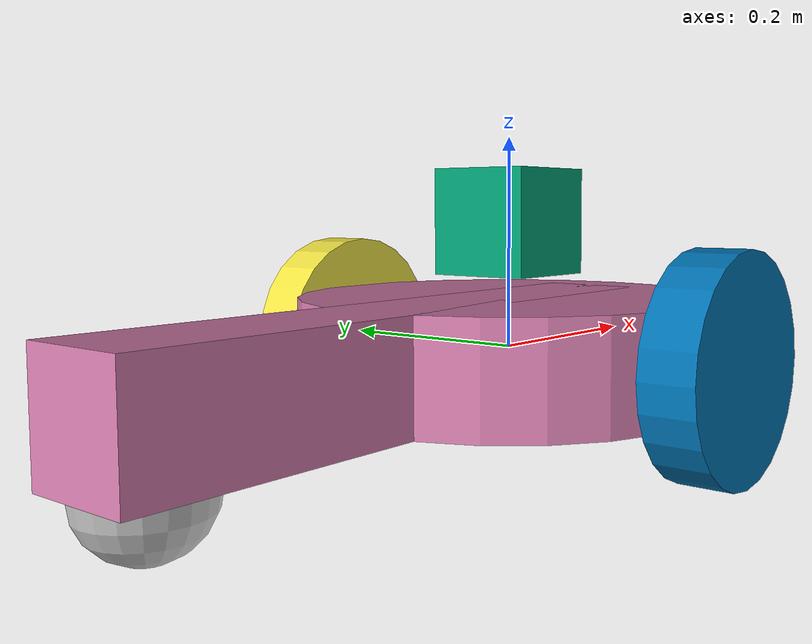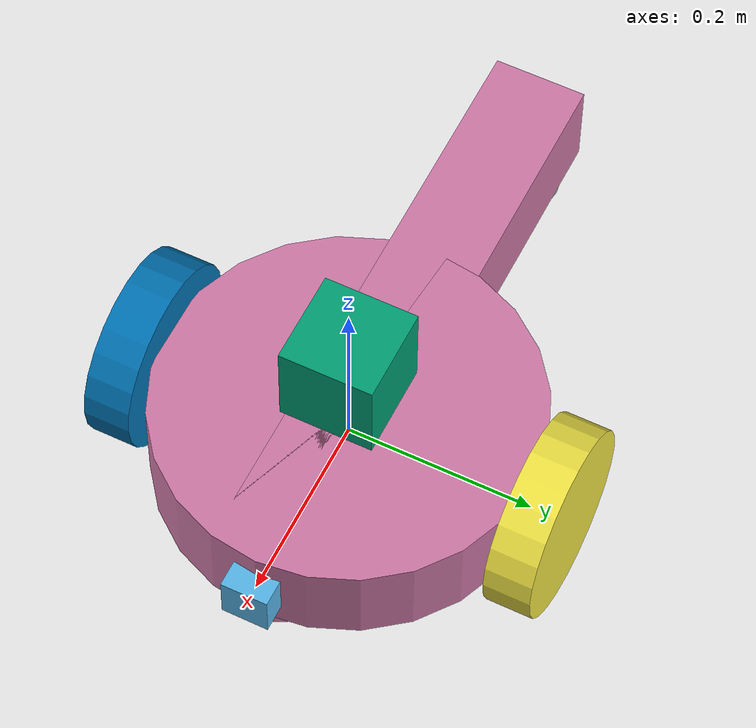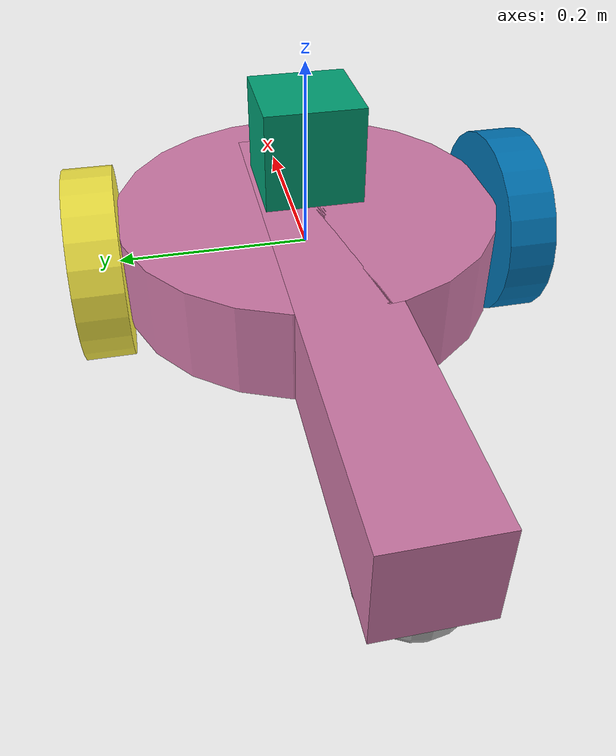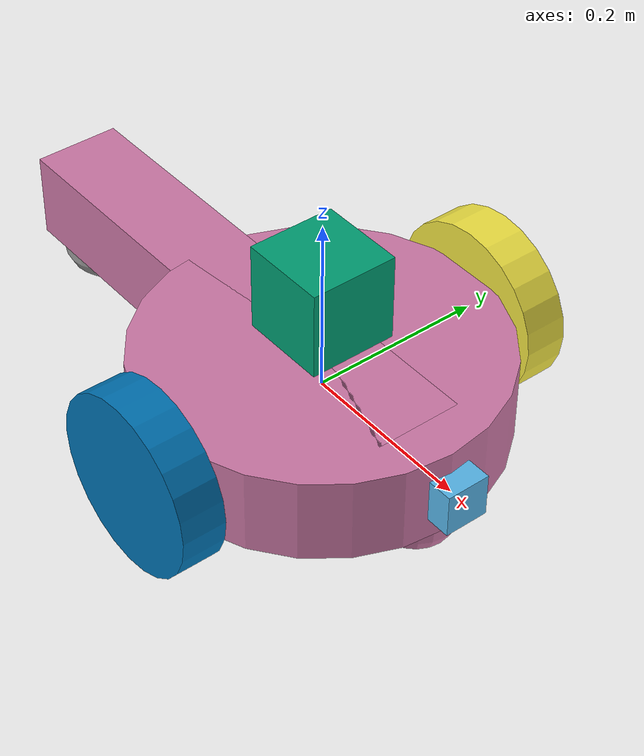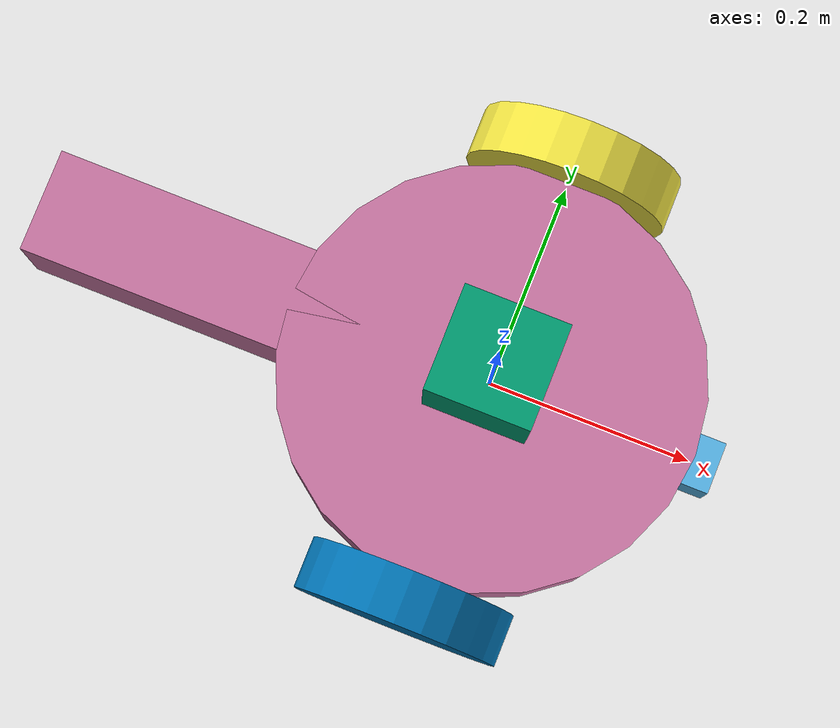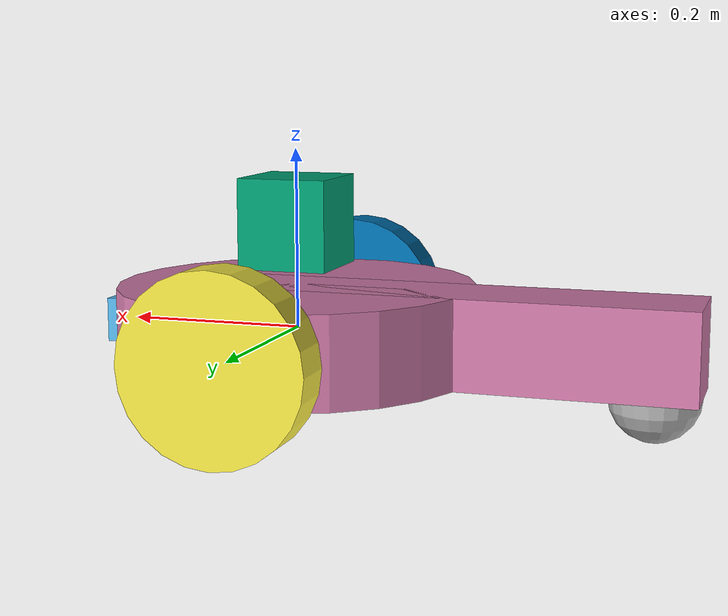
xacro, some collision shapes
<?xml version='1.0'?>

<robot name="slam_project" xmlns:xacro="http://www.ros.org/wiki/xacro">

  <xacro:include filename="$(find slam_project)/urdf/slam_project.gazebo" />

  <material name="Black">
    <color rgba="0.0 0.0 0.0 1.0"/>
  </material>
  <material name="Red">
    <color rgba="0.8 0.0 0.0 1.0"/>
  </material>
  <material name="White">
    <color rgba="1.0 1.0 1.0 1.0"/>
  </material>
  <material name="Blue">
    <color rgba="0.0 0.0 0.8 1.0"/>
  </material>
  <material name="Green">
    <color rgba="0.0 1.0 0.0 1.0"/>
  </material>

  <link name="base_footprint">
  </link>

  <joint name="robot_footprint_joint" type="fixed">
    <origin xyz="0 0 0" rpy="0 0 0" />
    <parent link="base_footprint"/>
    <child link="chassis" />
  </joint>

  <joint type="fixed" name="camera_joint">
    <origin xyz="0.2 0 0" rpy="0 0 0"/>
    <child link="camera_link"/>
    <parent link="chassis"/>
  </joint>

  <link name='camera_link'>
    <visual>
        <origin xyz="0 0 0" rpy="0 0 0"/>
      <geometry>
        <box size=".05 .05 .05"/>
      </geometry>
    </visual>
    <collision name='camera_collision'>
      <origin xyz="0 0 0" rpy="0 0 0"/>
      <geometry>
        <box size=".05 .05 .05"/>
      </geometry>
    </collision>
    <inertial>
      <mass value="0.1"/>
      <origin xyz="0 0 0" rpy="0 0 0"/>
      <inertia
          ixx="1e-6" ixy="0" ixz="0"
          iyy="1e-6" iyz="0"
          izz="1e-6"
      />
    </inertial>
  </link>

  <link name='hokuyo'>
    <visual name='hokuyo_visual'>
      <origin xyz="0 0 0" rpy="0 0 0"/>
      <geometry>
          <mesh filename="package://slam_project/meshes/hokuyo.dae" />
      </geometry>
    </visual>
    <collision name='hokuyo_collision'>
      <origin xyz="0 0 0" rpy="0 0 0"/>
      <geometry>
        <box size=".1 .1 .1"/>
      </geometry>
    </collision>
    <inertial>
      <mass value="0.1"/>
      <origin xyz="0 0 0" rpy="0 0 0"/>
      <inertia
          ixx="1e-6" ixy="0" ixz="0"
          iyy="1e-6" iyz="0"
          izz="1e-6"
      />
    </inertial>
  </link>

  <joint type="fixed" name="hokuyo_joint">
    <origin xyz="0 0 0.12" rpy="0 0 0"/>
    <child link="hokuyo"/>
    <parent link="chassis"/>
  </joint>

  <joint type="continuous" name="left_wheel_hinge">
    <origin xyz="0 0.22 0" rpy="0 0 0"/>
    <child link="left_wheel"/>
    <parent link="chassis"/>
    <axis xyz="0 1 0" rpy="0 0 0"/>
    <limit effort="10000" velocity="1000"/>
    <joint_properties damping="1.0" friction="1.0"/>
  </joint>

  <joint type="continuous" name="right_wheel_hinge">
    <origin xyz="0 -.22 0" rpy="0 0 0"/>
    <child link="right_wheel"/>
    <parent link="chassis"/>
    <axis xyz="0 1 0" rpy="0 0 0"/>
    <limit effort="10000" velocity="1000"/>
    <joint_properties damping="1.0" friction="1.0"/>
  </joint>

  <link name='left_wheel'>
    <visual>
      <origin xyz="0 0 0" rpy="0 1.5707 1.5707"/>
      <geometry>
          <cylinder length="0.05" radius="0.1"/>
      </geometry>
    </visual>
    <collision name='left_wheel_collision'>
        <origin xyz="0 0 0" rpy="0 1.5707 1.5707"/>
      <geometry>
          <cylinder length="0.05" radius="0.1"/>
      </geometry>
    </collision>
    <inertial>
      <mass value="5.0"/>
      <origin xyz="0 0 0" rpy="0 1.5707 1.5707"/>
      <inertia
          ixx="0.1" ixy="0" ixz="0"
          iyy="0.1" iyz="0"
          izz="0.1"
      />
    </inertial>
  </link>

  <link name='right_wheel'>
    <visual>
        <origin xyz="0 0 0" rpy="0 1.5707 1.5707"/>
      <geometry>
          <cylinder length="0.05" radius="0.1"/>
      </geometry>
    </visual>
    <collision name='right_wheel_collision'>
        <origin xyz="0 0 0" rpy="0 1.5707 1.5707"/>
      <geometry>
          <cylinder length="0.05" radius="0.1"/>
      </geometry>
    </collision>
    <inertial>
      <mass value="5.0"/>
      <origin xyz="0 0 0" rpy="0 1.5707 1.5707"/>
      <inertia
          ixx="0.1" ixy="0" ixz="0"
          iyy="0.1" iyz="0"
          izz="0.1"
      />
    </inertial>
  </link>

  <link name="camera_rgbd_frame">
    <inertial>
      <mass value="0.0001" />
      <origin xyz="0 0 0" />
      <inertia ixx="0.0001" ixy="0.0" ixz="0.0"
               iyy="0.0001" iyz="0.0"
               izz="0.0001" />
    </inertial>
  </link>

  <joint name="camera_rgbd_joint" type="fixed">
    <origin xyz="0 0 0" rpy="-1.57  0.0 -1.57" />
       <!--origin xyz="0.04 0 0.26" rpy="0 0 0" /-->
    <parent link="camera_link" />
    <child link="camera_rgbd_frame" />
  </joint>

  <link name='chassis'>
    <pose>0 0 0.1 0 0 0</pose>

    <inertial>
      <mass value="15.0"/>
      <origin xyz="0.0 0 0" rpy=" 0 0 0"/>
      <inertia
          ixx="0.1" ixy="0" ixz="0"
          iyy="0.1" iyz="0"
          izz="0.1"
      />
    </inertial>

    <collision name='collision'>
      <origin xyz="0 0 0" rpy=" 0 0 0"/>
      <geometry>
        <cylinder length="0.1" radius="0.2"/>
      </geometry>
    </collision>

    <visual name='chassis'>
      <origin xyz="0 0 0" rpy=" 0 0 0"/>
      <geometry>
        <cylinder length="0.1" radius="0.2"/>
      </geometry>
    </visual>

    <collision name='tail'>
      <origin xyz="-.15 0 0" rpy=" 0 0 0"/>
      <geometry>
         <box size=".6 .1 .1"/>
      </geometry>
    </collision>

    <visual name='tail_visual'>
      <origin xyz="-.15 0 0" rpy=" 0 0 0"/>
      <geometry>
         <box size=".6 .1 .1"/>
      </geometry>
    </visual>

    <collision name='front_caster_collision'>
      <origin xyz="0.15 0 -0.05" rpy=" 0 0 0"/>
      <geometry>
        <sphere radius="0.05"/>
      </geometry>
      <surface>
        <friction>
          <ode>
            <mu>0</mu>
            <mu2>0</mu2>
            <slip1>0.0</slip1>
            <slip2>0.0</slip2>
          </ode>
        </friction>
      </surface>
    </collision>

    <visual name='front_caster_visual'>
      <origin xyz="0.15 0 -0.05" rpy=" 0 0 0"/>
      <geometry>
        <sphere radius="0.05"/>
      </geometry>
    </visual>

  </link>
  <joint type="fixed" name="back_caster_joint">
    <origin xyz="-0.4 0 -0.05" rpy=" 0 0 0"/>
    <child link="back_caster"/>
    <parent link="chassis"/>
  </joint>
  <link name="back_caster">
    <collision name='back_caster_collision'>
      <origin xyz="0 0 0" rpy=" 0 0 0"/>
      <geometry>
        <sphere radius="0.05"/>
      </geometry>
      <surface>
        <friction>
          <ode>
            <mu>0</mu>
            <mu2>0</mu2>
            <slip1>0.0</slip1>
            <slip2>0.0</slip2>
          </ode>
        </friction>
      </surface>
    </collision>

    <visual name='back_caster_visual'>
        <!--origin xyz="-0.4  0 -0.05" rpy=" 0 0 0"/-->
      <origin xyz="0 0 0" rpy=" 0 0 0"/>
      <geometry>
        <sphere radius="0.05"/>
      </geometry>
    </visual>
    <inertial>
      <mass value="0.4"/>
      <origin xyz="0 0 0" rpy="0 0 0"/>
      <inertia
          ixx="1e-6" ixy="0" ixz="0"
          iyy="1e-6" iyz="0"
          izz="1e-6"
      />
    </inertial>
  </link>

</robot>
